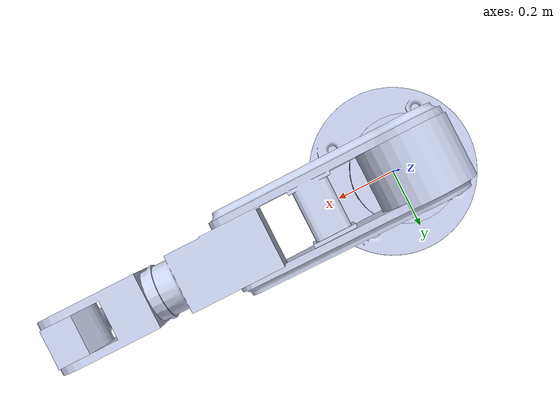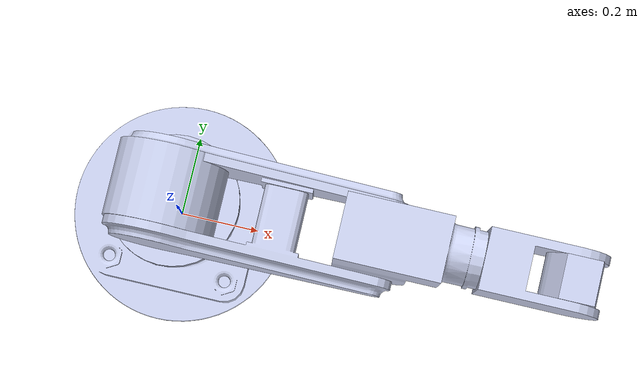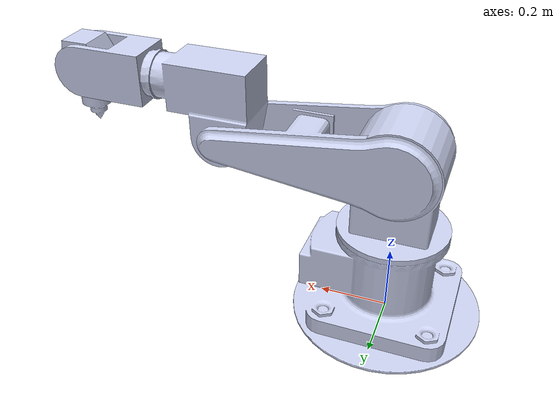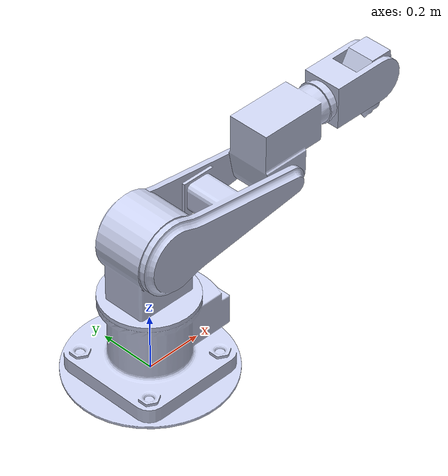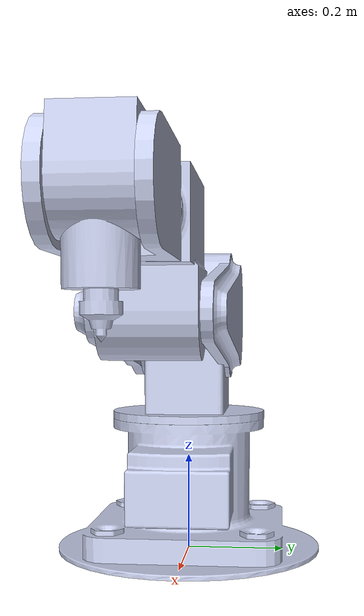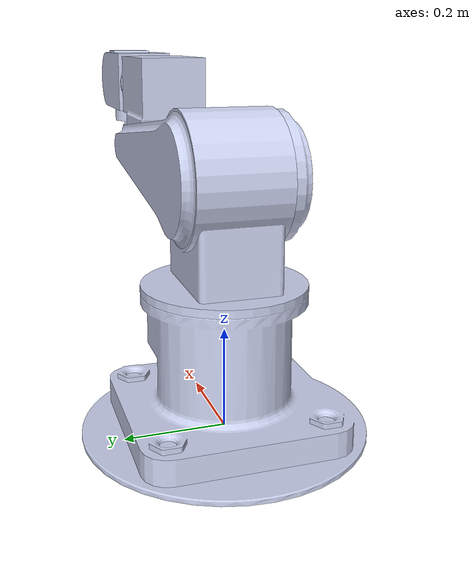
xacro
<?xml version="1.0" encoding="utf-8"?>
<robot name="robotic_hand" xmlns:xacro="http://ww.ros.org/wiki/xacro" >

  <xacro:property name="pi" value="3.1415926" />
  <xacro:property name="max_speed" value="0.5" />
  <xacro:property name="max_effort" value="10000000" />

  <!-- Used for fixing robot to Gazebo 'base_link' -->
  <link name="world"/>

  <link name="base_link">
    <inertial>
      <origin
        xyz="0.0308778577972146 7.23574440163174E-09 0.0929952149471287"
        rpy="0 0 0" />
      <mass
        value="19.8390707538009" />
      <inertia
        ixx="0.335668354254509"
        ixy="0"
        ixz="-0.0394085773407689"
        iyy="0.417595123261129"
        iyz="0"
        izz="0.489142579952611" />
    </inertial>
    <visual>
      <origin
        xyz="0 0 0"
        rpy="0 0 0" />
      <geometry>
        <mesh
          filename="package://robotic_hand/meshes/base_link.STL" />
      </geometry>
      <material
        name="">
        <color
          rgba="0.792156862745098 0.819607843137255 0.933333333333333 1" />
      </material>
    </visual>
    <collision>
      <origin
        xyz="0 0 0"
        rpy="0 0 0" />
      <geometry>
        <mesh
          filename="package://robotic_hand/meshes/base_link.STL" />
      </geometry>
    </collision>
  </link>

  <joint name="fixed" type="fixed">
    <parent link="world"/>
    <child link="base_link"/>
  </joint>

  <link
    name="link_01">
    <inertial>
      <origin
        xyz="-1.56260412873615E-10 6.9589674135401E-17 0.213075746734315"
        rpy="0 0 0" />
      <mass
        value="14.514675782209" />
      <inertia
        ixx="0.281386811179828"
        ixy="0"
        ixz="0"
        iyy="0.308061815657121"
        iyz="0"
        izz="0.109489938167645" />
    </inertial>
    <visual>
      <origin
        xyz="0 0 0"
        rpy="0 0 0" />
      <geometry>
        <mesh
          filename="package://robotic_hand/meshes/link_01.STL" />
      </geometry>
      <material
        name="">
        <color
          rgba="0.792156862745098 0.819607843137255 0.933333333333333 1" />
      </material>
    </visual>
    <collision>
      <origin
        xyz="0 0 0"
        rpy="0 0 0" />
      <geometry>
        <mesh
          filename="package://robotic_hand/meshes/link_01.STL" />
      </geometry>
    </collision>
  </link>

  <joint name="base_link__link_01" type="revolute">
    <origin
      xyz="0 0 0.16"
      rpy="0 0 0" />
    <parent
      link="base_link" />
    <child
      link="link_01" />
    <axis
      xyz="0 0 -1" />
    <limit
      lower="-3.1416"
      upper="3.1416"
      effort="${max_effort}"
      velocity="${max_speed}" />
  </joint>

  <transmission name="trans_base_link__link_01">
      <type>transmission_interface/SimpleTransmission</type>
      <joint name="base_link__link_01">
        <hardwareInterface>hardware_interface/EffortJointInterface</hardwareInterface>
      </joint>
      <actuator name="motor_base_link__link_01">
        <hardwareInterface>hardware_interface/EffortJointInterface</hardwareInterface>
        <mechanicalReduction>1</mechanicalReduction>
      </actuator>
    </transmission>

  <link name="link_02">
    <inertial>
      <origin
        xyz="0.172960283257488 9.2323982903153E-09 -0.00999999671491019"
        rpy="0 0 0" />
      <mass
        value="13.6291679155117" />
      <inertia
        ixx="0.116753847077147"
        ixy="0"
        ixz="0"
        iyy="0.573064357786754"
        iyz="0"
        izz="0.508986803441728" />
    </inertial>
    <visual>
      <origin
        xyz="0 0 0"
        rpy="0 0 0" />
      <geometry>
        <mesh
          filename="package://robotic_hand/meshes/link_02.STL" />
      </geometry>
      <material
        name="">
        <color
          rgba="0.792156862745098 0.819607843137255 0.933333333333333 1" />
      </material>
    </visual>
    <collision>
      <origin
        xyz="0 0 0"
        rpy="0 0 0" />
      <geometry>
        <mesh
          filename="package://robotic_hand/meshes/link_02.STL" />
      </geometry>
    </collision>
  </link>

  <joint name="link_01__link_02" type="revolute">
    <origin
      xyz="0 0 0.336"
      rpy="-1.5708 0 0" />
    <parent
      link="link_01" />
    <child
      link="link_02" />
    <axis
      xyz="0 0 1" />
    <limit
      lower="-3.1416"
      upper="0.57"
      effort="${max_effort}"
      velocity="${max_speed}" />
  </joint>

  <transmission name="trans_link_01__link_02">
      <type>transmission_interface/SimpleTransmission</type>
      <joint name="link_01__link_02">
        <hardwareInterface>hardware_interface/EffortJointInterface</hardwareInterface>
      </joint>
      <actuator name="motor_link_01__link_02">
        <hardwareInterface>hardware_interface/EffortJointInterface</hardwareInterface>
        <mechanicalReduction>1</mechanicalReduction>
      </actuator>
    </transmission>

  <link name="link_03">
    <inertial>
      <origin
        xyz="0.136864844611323 -0.116084428922871 -0.0100000007019711"
        rpy="0 0 0" />
      <mass
        value="12.0205287274032" />
      <inertia
        ixx="0.0721120340472313"
        ixy="0.0378363713177936"
        ixz="0"
        iyy="0.338766579653999"
        iyz="0"
        izz="0.365721756676767" />
    </inertial>
    <visual>
      <origin
        xyz="0 0 0"
        rpy="0 0 0" />
      <geometry>
        <mesh
          filename="package://robotic_hand/meshes/link_03.STL" />
      </geometry>
      <material
        name="">
        <color
          rgba="0.796078431372549 0.823529411764706 0.937254901960784 1" />
      </material>
    </visual>
    <collision>
      <origin
        xyz="0 0 0"
        rpy="0 0 0" />
      <geometry>
        <mesh
          filename="package://robotic_hand/meshes/link_03.STL" />
      </geometry>
    </collision>
  </link>

  <joint name="link_02__link_03" type="revolute">
    <origin
      xyz="0.5 0 0"
      rpy="0 0 0" />
    <parent
      link="link_02" />
    <child
      link="link_03" />
    <axis
      xyz="0 0 1" />
    <limit
      lower="-0.55"
      upper="1.50"
      effort="${max_effort}"
      velocity="${max_speed}" />
  </joint>

  <transmission name="trans_link_02__link_03">
      <type>transmission_interface/SimpleTransmission</type>
      <joint name="link_02__link_03">
        <hardwareInterface>hardware_interface/EffortJointInterface</hardwareInterface>
      </joint>
      <actuator name="motor_link_02__link_03">
        <hardwareInterface>hardware_interface/EffortJointInterface</hardwareInterface>
        <mechanicalReduction>1</mechanicalReduction>
      </actuator>
    </transmission>

  <link name="link_04">
    <inertial>
      <origin
        xyz="0.0242575575997317 -0.00255913414627673 -0.0100000041827126"
        rpy="0 0 0" />
      <mass
        value="1.18860538743332" />
      <inertia
        ixx="0.00217445241621486"
        ixy="-0.000253211295896707"
        ixz="0"
        iyy="0.00634988308639446"
        iyz="0"
        izz="0.00688569387033409" />
    </inertial>
    <visual>
      <origin
        xyz="0 0 0"
        rpy="0 0 0" />
      <geometry>
        <mesh
          filename="package://robotic_hand/meshes/link_04.STL" />
      </geometry>
      <material
        name="">
        <color
          rgba="0.792156862745098 0.819607843137255 0.933333333333333 1" />
      </material>
    </visual>
    <collision>
      <origin
        xyz="0 0 0"
        rpy="0 0 0" />
      <geometry>
        <mesh
          filename="package://robotic_hand/meshes/link_04.STL" />
      </geometry>
    </collision>
  </link>

  <joint name="link_03__link_04" type="revolute">
    <origin
      xyz="0.42771 -0.13865 0"
      rpy="0 0 1.5708" />
    <parent
      link="link_03" />
    <child
      link="link_04" />
    <axis
      xyz="0 0 -1" />
    <limit
      lower="-0.50"
      upper="1.57"
      effort="${max_effort}"
      velocity="${max_speed}" />
  </joint>

  <transmission name="trans_link_03__link_04">
      <type>transmission_interface/SimpleTransmission</type>
      <joint name="link_03__link_04">
        <hardwareInterface>hardware_interface/EffortJointInterface</hardwareInterface>
      </joint>
      <actuator name="motor_link_03__link_04">
        <hardwareInterface>hardware_interface/EffortJointInterface</hardwareInterface>
        <mechanicalReduction>1</mechanicalReduction>
      </actuator>
    </transmission>

  <gazebo>
    <plugin name="gazebo_ros_control" filename="libgazebo_ros_control.so">
      <robotNamespace>/robotic_hand</robotNamespace>
      <robotSimType>gazebo_ros_control/DefaultRobotHWSim</robotSimType>
    </plugin>
  </gazebo>

</robot>
